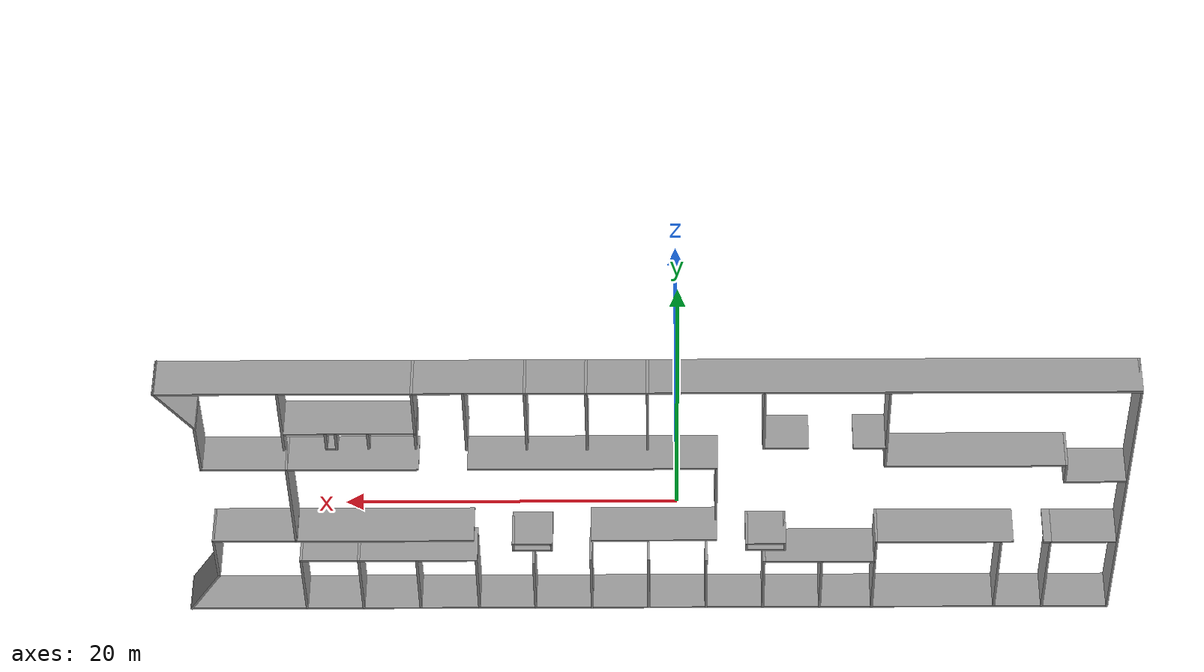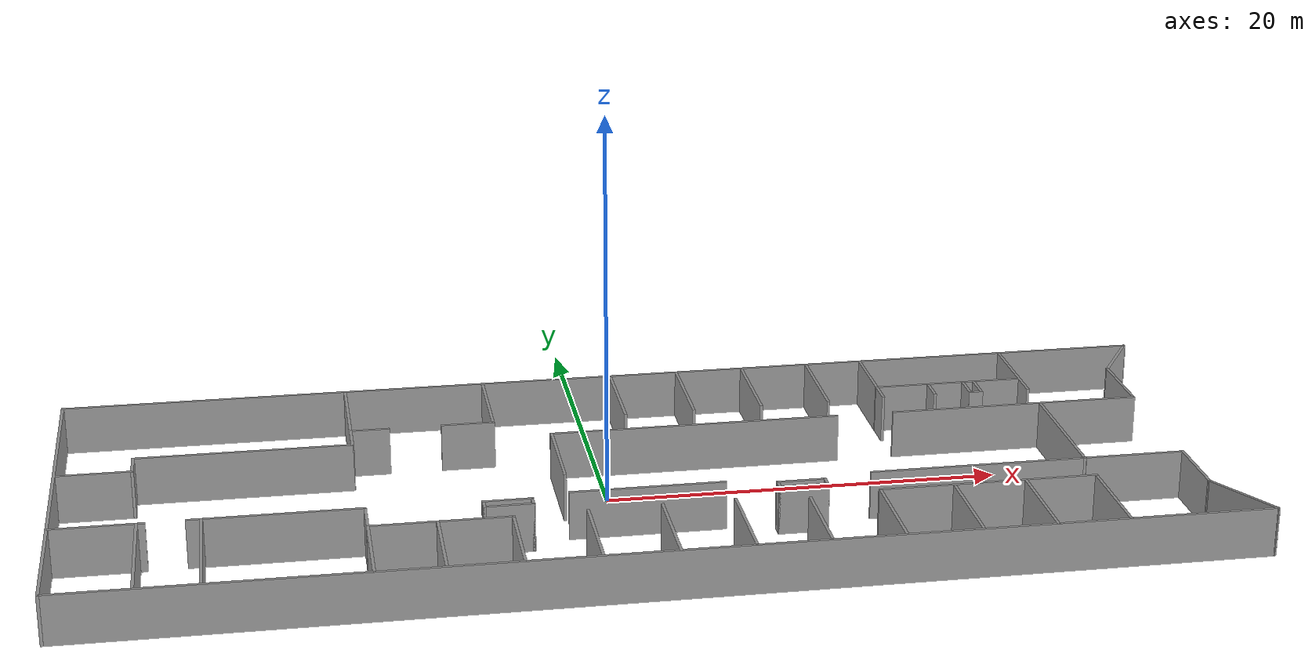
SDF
<?xml version='1.0'?>
<sdf version='1.7'>
  <model name='perch'>
    <pose>1.75988 -0.369617 0 0 -0 0</pose>
    <link name='Wall_1'>
      <collision name='Wall_1_Collision'>
        <geometry>
          <box>
            <size>4.25 0.15 2.5</size>
          </box>
        </geometry>
        <pose>0 0 1.25 0 -0 0</pose>
      </collision>
      <visual name='Wall_1_Visual'>
        <pose>0 0 1.25 0 -0 0</pose>
        <geometry>
          <box>
            <size>4.25 0.15 2.5</size>
          </box>
        </geometry>
        <material>
          <script>
            <uri>file://media/materials/scripts/gazebo.material</uri>
            <name>Gazebo/Grey</name>
          </script>
          <ambient>1 1 1 1</ambient>
        </material>
        <meta>
          <layer>0</layer>
        </meta>
      </visual>
      <pose>26.7358 5.62521 0 0 -0 -1.5708</pose>
    </link>
    <link name='Wall_101'>
      <collision name='Wall_101_Collision'>
        <geometry>
          <box>
            <size>3.84972 0.15 2.5</size>
          </box>
        </geometry>
        <pose>0 0 1.25 0 -0 0</pose>
      </collision>
      <visual name='Wall_101_Visual'>
        <pose>0 0 1.25 0 -0 0</pose>
        <geometry>
          <box>
            <size>3.84972 0.15 2.5</size>
          </box>
        </geometry>
        <material>
          <script>
            <uri>file://media/materials/scripts/gazebo.material</uri>
            <name>Gazebo/Grey</name>
          </script>
          <ambient>1 1 1 1</ambient>
        </material>
        <meta>
          <layer>0</layer>
        </meta>
      </visual>
      <pose>-26.8899 2.15562 0 0 -0 0</pose>
    </link>
    <link name='Wall_102'>
      <collision name='Wall_102_Collision'>
        <geometry>
          <box>
            <size>1.75 0.15 2.5</size>
          </box>
        </geometry>
        <pose>0 0 1.25 0 -0 0</pose>
      </collision>
      <visual name='Wall_102_Visual'>
        <pose>0 0 1.25 0 -0 0</pose>
        <geometry>
          <box>
            <size>1.75 0.15 2.5</size>
          </box>
        </geometry>
        <material>
          <script>
            <uri>file://media/materials/scripts/gazebo.material</uri>
            <name>Gazebo/Grey</name>
          </script>
          <ambient>1 1 1 1</ambient>
        </material>
        <meta>
          <layer>0</layer>
        </meta>
      </visual>
      <pose>-25.04 2.95553 0 0 -0 1.57097</pose>
    </link>
    <link name='Wall_103'>
      <collision name='Wall_103_Collision'>
        <geometry>
          <box>
            <size>11 0.15 2.5</size>
          </box>
        </geometry>
        <pose>0 0 1.25 0 -0 0</pose>
      </collision>
      <visual name='Wall_103_Visual'>
        <pose>0 0 1.25 0 -0 0</pose>
        <geometry>
          <box>
            <size>11 0.15 2.5</size>
          </box>
        </geometry>
        <material>
          <script>
            <uri>file://media/materials/scripts/gazebo.material</uri>
            <name>Gazebo/Grey</name>
          </script>
          <ambient>1 1 1 1</ambient>
        </material>
        <meta>
          <layer>0</layer>
        </meta>
      </visual>
      <pose>-19.6152 3.75545 0 0 -0 0</pose>
    </link>
    <link name='Wall_107'>
      <collision name='Wall_107_Collision'>
        <geometry>
          <box>
            <size>7.25 0.15 2.5</size>
          </box>
        </geometry>
        <pose>0 0 1.25 0 -0 0</pose>
      </collision>
      <visual name='Wall_107_Visual'>
        <pose>0 0 1.25 0 -0 0</pose>
        <geometry>
          <box>
            <size>7.25 0.15 2.5</size>
          </box>
        </geometry>
        <material>
          <script>
            <uri>file://media/materials/scripts/gazebo.material</uri>
            <name>Gazebo/Grey</name>
          </script>
          <ambient>1 1 1 1</ambient>
        </material>
        <meta>
          <layer>0</layer>
        </meta>
      </visual>
      <pose>-14.1902 7.30545 0 0 -0 1.5708</pose>
    </link>
    <link name='Wall_112'>
      <collision name='Wall_112_Collision'>
        <geometry>
          <box>
            <size>2 0.15 2.5</size>
          </box>
        </geometry>
        <pose>0 0 1.25 0 -0 0</pose>
      </collision>
      <visual name='Wall_112_Visual'>
        <pose>0 0 1.25 0 -0 0</pose>
        <geometry>
          <box>
            <size>2 0.15 2.5</size>
          </box>
        </geometry>
        <material>
          <script>
            <uri>file://media/materials/scripts/gazebo.material</uri>
            <name>Gazebo/Grey</name>
          </script>
          <ambient>1 1 1 1</ambient>
        </material>
        <meta>
          <layer>0</layer>
        </meta>
      </visual>
      <pose>-13.2039 5.55962 0 0 -0 0</pose>
    </link>
    <link name='Wall_114'>
      <collision name='Wall_114_Collision'>
        <geometry>
          <box>
            <size>2.75 0.15 2.5</size>
          </box>
        </geometry>
        <pose>0 0 1.25 0 -0 0</pose>
      </collision>
      <visual name='Wall_114_Visual'>
        <pose>0 0 1.25 0 -0 0</pose>
        <geometry>
          <box>
            <size>2.75 0.15 2.5</size>
          </box>
        </geometry>
        <material>
          <script>
            <uri>file://media/materials/scripts/gazebo.material</uri>
            <name>Gazebo/Grey</name>
          </script>
          <ambient>1 1 1 1</ambient>
        </material>
        <meta>
          <layer>0</layer>
        </meta>
      </visual>
      <pose>-8.19643 5.55924 0 0 -0 0</pose>
    </link>
    <link name='Wall_115'>
      <collision name='Wall_115_Collision'>
        <geometry>
          <box>
            <size>5.48969 0.15 2.5</size>
          </box>
        </geometry>
        <pose>0 0 1.25 0 -0 0</pose>
      </collision>
      <visual name='Wall_115_Visual'>
        <pose>0 0 1.25 0 -0 0</pose>
        <geometry>
          <box>
            <size>5.48969 0.15 2.5</size>
          </box>
        </geometry>
        <material>
          <script>
            <uri>file://media/materials/scripts/gazebo.material</uri>
            <name>Gazebo/Grey</name>
          </script>
          <ambient>1 1 1 1</ambient>
        </material>
        <meta>
          <layer>0</layer>
        </meta>
      </visual>
      <pose>-6.89644 8.23423 0 0 -0 1.5708</pose>
    </link>
    <link name='Wall_12'>
      <collision name='Wall_12_Collision'>
        <geometry>
          <box>
            <size>57.75 0.15 2.5</size>
          </box>
        </geometry>
        <pose>0 0 1.25 0 -0 0</pose>
      </collision>
      <visual name='Wall_12_Visual'>
        <pose>0 0 1.25 0 -0 0</pose>
        <geometry>
          <box>
            <size>57.75 0.15 2.5</size>
          </box>
        </geometry>
        <material>
          <script>
            <uri>file://media/materials/scripts/gazebo.material</uri>
            <name>Gazebo/Grey</name>
          </script>
          <ambient>1 1 1 1</ambient>
        </material>
        <meta>
          <layer>0</layer>
        </meta>
      </visual>
      <pose>-0.014225 10.9245 0 0 -0 0</pose>
    </link>
    <link name='Wall_14'>
      <collision name='Wall_14_Collision'>
        <geometry>
          <box>
            <size>3.99193 0.15 2.5</size>
          </box>
        </geometry>
        <pose>0 0 1.25 0 -0 0</pose>
      </collision>
      <visual name='Wall_14_Visual'>
        <pose>0 0 1.25 0 -0 0</pose>
        <geometry>
          <box>
            <size>3.99193 0.15 2.5</size>
          </box>
        </geometry>
        <material>
          <script>
            <uri>file://media/materials/scripts/gazebo.material</uri>
            <name>Gazebo/Grey</name>
          </script>
          <ambient>1 1 1 1</ambient>
        </material>
        <meta>
          <layer>0</layer>
        </meta>
      </visual>
      <pose>27.7608 9.29985 0 0 -0 -2.13363</pose>
    </link>
    <link name='Wall_16'>
      <collision name='Wall_16_Collision'>
        <geometry>
          <box>
            <size>5.25 0.15 2.5</size>
          </box>
        </geometry>
        <pose>0 0 1.25 0 -0 0</pose>
      </collision>
      <visual name='Wall_16_Visual'>
        <pose>0 0 1.25 0 -0 0</pose>
        <geometry>
          <box>
            <size>5.25 0.15 2.5</size>
          </box>
        </geometry>
        <material>
          <script>
            <uri>file://media/materials/scripts/gazebo.material</uri>
            <name>Gazebo/Grey</name>
          </script>
          <ambient>1 1 1 1</ambient>
        </material>
        <meta>
          <layer>0</layer>
        </meta>
      </visual>
      <pose>21.5228 -8.36181 0 0 -0 1.5708</pose>
    </link>
    <link name='Wall_18'>
      <collision name='Wall_18_Collision'>
        <geometry>
          <box>
            <size>11 0.15 2.5</size>
          </box>
        </geometry>
        <pose>0 0 1.25 0 -0 0</pose>
      </collision>
      <visual name='Wall_18_Visual'>
        <pose>0 0 1.25 0 -0 0</pose>
        <geometry>
          <box>
            <size>11 0.15 2.5</size>
          </box>
        </geometry>
        <material>
          <script>
            <uri>file://media/materials/scripts/gazebo.material</uri>
            <name>Gazebo/Grey</name>
          </script>
          <ambient>1 1 1 1</ambient>
        </material>
        <meta>
          <layer>0</layer>
        </meta>
      </visual>
      <pose>16.0978 -5.81181 0 0 -0 3.14159</pose>
    </link>
    <link name='Wall_2'>
      <collision name='Wall_2_Collision'>
        <geometry>
          <box>
            <size>5.25 0.15 2.5</size>
          </box>
        </geometry>
        <pose>0 0 1.25 0 -0 0</pose>
      </collision>
      <visual name='Wall_2_Visual'>
        <pose>0 0 1.25 0 -0 0</pose>
        <geometry>
          <box>
            <size>5.25 0.15 2.5</size>
          </box>
        </geometry>
        <material>
          <script>
            <uri>file://media/materials/scripts/gazebo.material</uri>
            <name>Gazebo/Grey</name>
          </script>
          <ambient>1 1 1 1</ambient>
        </material>
        <meta>
          <layer>0</layer>
        </meta>
      </visual>
      <pose>24.1858 3.5752 0 0 -0 3.14159</pose>
    </link>
    <link name='Wall_20'>
      <collision name='Wall_20_Collision'>
        <geometry>
          <box>
            <size>5.25 0.15 2.5</size>
          </box>
        </geometry>
        <pose>0 0 1.25 0 -0 0</pose>
      </collision>
      <visual name='Wall_20_Visual'>
        <pose>0 0 1.25 0 -0 0</pose>
        <geometry>
          <box>
            <size>5.25 0.15 2.5</size>
          </box>
        </geometry>
        <material>
          <script>
            <uri>file://media/materials/scripts/gazebo.material</uri>
            <name>Gazebo/Grey</name>
          </script>
          <ambient>1 1 1 1</ambient>
        </material>
        <meta>
          <layer>0</layer>
        </meta>
      </visual>
      <pose>10.6728 -8.36181 0 0 -0 -1.5708</pose>
    </link>
    <link name='Wall_24'>
      <collision name='Wall_24_Collision'>
        <geometry>
          <box>
            <size>5.25 0.15 2.5</size>
          </box>
        </geometry>
        <pose>0 0 1.25 0 -0 0</pose>
      </collision>
      <visual name='Wall_24_Visual'>
        <pose>0 0 1.25 0 -0 0</pose>
        <geometry>
          <box>
            <size>5.25 0.15 2.5</size>
          </box>
        </geometry>
        <material>
          <script>
            <uri>file://media/materials/scripts/gazebo.material</uri>
            <name>Gazebo/Grey</name>
          </script>
          <ambient>1 1 1 1</ambient>
        </material>
        <meta>
          <layer>0</layer>
        </meta>
      </visual>
      <pose>14.3611 -8.37361 0 0 -0 -1.5708</pose>
    </link>
    <link name='Wall_26'>
      <collision name='Wall_26_Collision'>
        <geometry>
          <box>
            <size>5.25 0.15 2.5</size>
          </box>
        </geometry>
        <pose>0 0 1.25 0 -0 0</pose>
      </collision>
      <visual name='Wall_26_Visual'>
        <pose>0 0 1.25 0 -0 0</pose>
        <geometry>
          <box>
            <size>5.25 0.15 2.5</size>
          </box>
        </geometry>
        <material>
          <script>
            <uri>file://media/materials/scripts/gazebo.material</uri>
            <name>Gazebo/Grey</name>
          </script>
          <ambient>1 1 1 1</ambient>
        </material>
        <meta>
          <layer>0</layer>
        </meta>
      </visual>
      <pose>17.9528 -8.35792 0 0 -0 -1.5708</pose>
    </link>
    <link name='Wall_28'>
      <collision name='Wall_28_Collision'>
        <geometry>
          <box>
            <size>4.85 0.15 2.5</size>
          </box>
        </geometry>
        <pose>0 0 1.25 0 -0 0</pose>
      </collision>
      <visual name='Wall_28_Visual'>
        <pose>0 0 1.25 0 -0 0</pose>
        <geometry>
          <box>
            <size>4.85 0.15 2.5</size>
          </box>
        </geometry>
        <material>
          <script>
            <uri>file://media/materials/scripts/gazebo.material</uri>
            <name>Gazebo/Grey</name>
          </script>
          <ambient>1 1 1 1</ambient>
        </material>
        <meta>
          <layer>0</layer>
        </meta>
      </visual>
      <pose>7.13012 -8.57138 0 0 -0 1.5708</pose>
    </link>
    <link name='Wall_3'>
      <collision name='Wall_3_Collision'>
        <geometry>
          <box>
            <size>7.44959 0.15 2.5</size>
          </box>
        </geometry>
        <pose>0 0 1.25 0 -0 0</pose>
      </collision>
      <visual name='Wall_3_Visual'>
        <pose>0 0 1.25 0 -0 0</pose>
        <geometry>
          <box>
            <size>7.44959 0.15 2.5</size>
          </box>
        </geometry>
        <material>
          <script>
            <uri>file://media/materials/scripts/gazebo.material</uri>
            <name>Gazebo/Grey</name>
          </script>
          <ambient>1 1 1 1</ambient>
        </material>
        <meta>
          <layer>0</layer>
        </meta>
      </visual>
      <pose>21.6359 -0.074589 0 0 -0 -1.57075</pose>
    </link>
    <link name='Wall_30'>
      <collision name='Wall_30_Collision'>
        <geometry>
          <box>
            <size>5.25 0.15 2.5</size>
          </box>
        </geometry>
        <pose>0 0 1.25 0 -0 0</pose>
      </collision>
      <visual name='Wall_30_Visual'>
        <pose>0 0 1.25 0 -0 0</pose>
        <geometry>
          <box>
            <size>5.25 0.15 2.5</size>
          </box>
        </geometry>
        <material>
          <script>
            <uri>file://media/materials/scripts/gazebo.material</uri>
            <name>Gazebo/Grey</name>
          </script>
          <ambient>1 1 1 1</ambient>
        </material>
        <meta>
          <layer>0</layer>
        </meta>
      </visual>
      <pose>3.57006 -8.3711 0 0 -0 1.5708</pose>
    </link>
    <link name='Wall_32'>
      <collision name='Wall_32_Collision'>
        <geometry>
          <box>
            <size>5.25 0.15 2.5</size>
          </box>
        </geometry>
        <pose>0 0 1.25 0 -0 0</pose>
      </collision>
      <visual name='Wall_32_Visual'>
        <pose>0 0 1.25 0 -0 0</pose>
        <geometry>
          <box>
            <size>5.25 0.15 2.5</size>
          </box>
        </geometry>
        <material>
          <script>
            <uri>file://media/materials/scripts/gazebo.material</uri>
            <name>Gazebo/Grey</name>
          </script>
          <ambient>1 1 1 1</ambient>
        </material>
        <meta>
          <layer>0</layer>
        </meta>
      </visual>
      <pose>0.009657 -8.35542 0 0 -0 1.5708</pose>
    </link>
    <link name='Wall_34'>
      <collision name='Wall_34_Collision'>
        <geometry>
          <box>
            <size>5.14954 0.15 2.5</size>
          </box>
        </geometry>
        <pose>0 0 1.25 0 -0 0</pose>
      </collision>
      <visual name='Wall_34_Visual'>
        <pose>0 0 1.25 0 -0 0</pose>
        <geometry>
          <box>
            <size>5.14954 0.15 2.5</size>
          </box>
        </geometry>
        <material>
          <script>
            <uri>file://media/materials/scripts/gazebo.material</uri>
            <name>Gazebo/Grey</name>
          </script>
          <ambient>1 1 1 1</ambient>
        </material>
        <meta>
          <layer>0</layer>
        </meta>
      </visual>
      <pose>-3.58188 -8.38338 0 0 -0 1.5708</pose>
    </link>
    <link name='Wall_37'>
      <collision name='Wall_37_Collision'>
        <geometry>
          <box>
            <size>2.5 0.15 2.5</size>
          </box>
        </geometry>
        <pose>0 0 1.25 0 -0 0</pose>
      </collision>
      <visual name='Wall_37_Visual'>
        <pose>0 0 1.25 0 -0 0</pose>
        <geometry>
          <box>
            <size>2.5 0.15 2.5</size>
          </box>
        </geometry>
        <material>
          <script>
            <uri>file://media/materials/scripts/gazebo.material</uri>
            <name>Gazebo/Grey</name>
          </script>
          <ambient>1 1 1 1</ambient>
        </material>
        <meta>
          <layer>0</layer>
        </meta>
      </visual>
      <pose>7.14749 -4.14536 0 0 -0 3.14159</pose>
    </link>
    <link name='Wall_38'>
      <collision name='Wall_38_Collision'>
        <geometry>
          <box>
            <size>0.75 0.15 2.5</size>
          </box>
        </geometry>
        <pose>0 0 1.25 0 -0 0</pose>
      </collision>
      <visual name='Wall_38_Visual'>
        <pose>0 0 1.25 0 -0 0</pose>
        <geometry>
          <box>
            <size>0.75 0.15 2.5</size>
          </box>
        </geometry>
        <material>
          <script>
            <uri>file://media/materials/scripts/gazebo.material</uri>
            <name>Gazebo/Grey</name>
          </script>
          <ambient>1 1 1 1</ambient>
        </material>
        <meta>
          <layer>0</layer>
        </meta>
      </visual>
      <pose>5.9725 -4.44536 0 0 -0 -1.5708</pose>
    </link>
    <link name='Wall_39'>
      <collision name='Wall_39_Collision'>
        <geometry>
          <box>
            <size>2.5 0.15 2.5</size>
          </box>
        </geometry>
        <pose>0 0 1.25 0 -0 0</pose>
      </collision>
      <visual name='Wall_39_Visual'>
        <pose>0 0 1.25 0 -0 0</pose>
        <geometry>
          <box>
            <size>2.5 0.15 2.5</size>
          </box>
        </geometry>
        <material>
          <script>
            <uri>file://media/materials/scripts/gazebo.material</uri>
            <name>Gazebo/Grey</name>
          </script>
          <ambient>1 1 1 1</ambient>
        </material>
        <meta>
          <layer>0</layer>
        </meta>
      </visual>
      <pose>7.14749 -4.74536 0 0 -0 0</pose>
    </link>
    <link name='Wall_4'>
      <collision name='Wall_4_Collision'>
        <geometry>
          <box>
            <size>5.25 0.15 2.5</size>
          </box>
        </geometry>
        <pose>0 0 1.25 0 -0 0</pose>
      </collision>
      <visual name='Wall_4_Visual'>
        <pose>0 0 1.25 0 -0 0</pose>
        <geometry>
          <box>
            <size>5.25 0.15 2.5</size>
          </box>
        </geometry>
        <material>
          <script>
            <uri>file://media/materials/scripts/gazebo.material</uri>
            <name>Gazebo/Grey</name>
          </script>
          <ambient>1 1 1 1</ambient>
        </material>
        <meta>
          <layer>0</layer>
        </meta>
      </visual>
      <pose>24.1861 -3.72438 0 0 -0 0</pose>
    </link>
    <link name='Wall_40'>
      <collision name='Wall_40_Collision'>
        <geometry>
          <box>
            <size>0.75 0.15 2.5</size>
          </box>
        </geometry>
        <pose>0 0 1.25 0 -0 0</pose>
      </collision>
      <visual name='Wall_40_Visual'>
        <pose>0 0 1.25 0 -0 0</pose>
        <geometry>
          <box>
            <size>0.75 0.15 2.5</size>
          </box>
        </geometry>
        <material>
          <script>
            <uri>file://media/materials/scripts/gazebo.material</uri>
            <name>Gazebo/Grey</name>
          </script>
          <ambient>1 1 1 1</ambient>
        </material>
        <meta>
          <layer>0</layer>
        </meta>
      </visual>
      <pose>8.32249 -4.44536 0 0 -0 1.5708</pose>
    </link>
    <link name='Wall_42'>
      <collision name='Wall_42_Collision'>
        <geometry>
          <box>
            <size>2.5 0.15 2.5</size>
          </box>
        </geometry>
        <pose>0 0 1.25 0 -0 0</pose>
      </collision>
      <visual name='Wall_42_Visual'>
        <pose>0 0 1.25 0 -0 0</pose>
        <geometry>
          <box>
            <size>2.5 0.15 2.5</size>
          </box>
        </geometry>
        <material>
          <script>
            <uri>file://media/materials/scripts/gazebo.material</uri>
            <name>Gazebo/Grey</name>
          </script>
          <ambient>1 1 1 1</ambient>
        </material>
        <meta>
          <layer>0</layer>
        </meta>
      </visual>
      <pose>-7.2196 -4.14536 0 0 -0 3.14159</pose>
    </link>
    <link name='Wall_43'>
      <collision name='Wall_43_Collision'>
        <geometry>
          <box>
            <size>0.75 0.15 2.5</size>
          </box>
        </geometry>
        <pose>0 0 1.25 0 -0 0</pose>
      </collision>
      <visual name='Wall_43_Visual'>
        <pose>0 0 1.25 0 -0 0</pose>
        <geometry>
          <box>
            <size>0.75 0.15 2.5</size>
          </box>
        </geometry>
        <material>
          <script>
            <uri>file://media/materials/scripts/gazebo.material</uri>
            <name>Gazebo/Grey</name>
          </script>
          <ambient>1 1 1 1</ambient>
        </material>
        <meta>
          <layer>0</layer>
        </meta>
      </visual>
      <pose>-8.3946 -4.44536 0 0 -0 -1.5708</pose>
    </link>
    <link name='Wall_44'>
      <collision name='Wall_44_Collision'>
        <geometry>
          <box>
            <size>2.5 0.15 2.5</size>
          </box>
        </geometry>
        <pose>0 0 1.25 0 -0 0</pose>
      </collision>
      <visual name='Wall_44_Visual'>
        <pose>0 0 1.25 0 -0 0</pose>
        <geometry>
          <box>
            <size>2.5 0.15 2.5</size>
          </box>
        </geometry>
        <material>
          <script>
            <uri>file://media/materials/scripts/gazebo.material</uri>
            <name>Gazebo/Grey</name>
          </script>
          <ambient>1 1 1 1</ambient>
        </material>
        <meta>
          <layer>0</layer>
        </meta>
      </visual>
      <pose>-7.2196 -4.74536 0 0 -0 0</pose>
    </link>
    <link name='Wall_45'>
      <collision name='Wall_45_Collision'>
        <geometry>
          <box>
            <size>0.75 0.15 2.5</size>
          </box>
        </geometry>
        <pose>0 0 1.25 0 -0 0</pose>
      </collision>
      <visual name='Wall_45_Visual'>
        <pose>0 0 1.25 0 -0 0</pose>
        <geometry>
          <box>
            <size>0.75 0.15 2.5</size>
          </box>
        </geometry>
        <material>
          <script>
            <uri>file://media/materials/scripts/gazebo.material</uri>
            <name>Gazebo/Grey</name>
          </script>
          <ambient>1 1 1 1</ambient>
        </material>
        <meta>
          <layer>0</layer>
        </meta>
      </visual>
      <pose>-6.0446 -4.44536 0 0 -0 1.5708</pose>
    </link>
    <link name='Wall_47'>
      <collision name='Wall_47_Collision'>
        <geometry>
          <box>
            <size>0.25 0.15 2.5</size>
          </box>
        </geometry>
        <pose>0 0 1.25 0 -0 0</pose>
      </collision>
      <visual name='Wall_47_Visual'>
        <pose>0 0 1.25 0 -0 0</pose>
        <geometry>
          <box>
            <size>0.25 0.15 2.5</size>
          </box>
        </geometry>
        <material>
          <script>
            <uri>file://media/materials/scripts/gazebo.material</uri>
            <name>Gazebo/Grey</name>
          </script>
          <ambient>1 1 1 1</ambient>
        </material>
        <meta>
          <layer>0</layer>
        </meta>
      </visual>
      <pose>21.6359 -3.67459 0 0 -0 1.57425</pose>
    </link>
    <link name='Wall_48'>
      <collision name='Wall_48_Collision'>
        <geometry>
          <box>
            <size>0.25 0.15 2.5</size>
          </box>
        </geometry>
        <pose>0 0 1.25 0 -0 0</pose>
      </collision>
      <visual name='Wall_48_Visual'>
        <pose>0 0 1.25 0 -0 0</pose>
        <geometry>
          <box>
            <size>0.25 0.15 2.5</size>
          </box>
        </geometry>
        <material>
          <script>
            <uri>file://media/materials/scripts/gazebo.material</uri>
            <name>Gazebo/Grey</name>
          </script>
          <ambient>1 1 1 1</ambient>
        </material>
        <meta>
          <layer>0</layer>
        </meta>
      </visual>
      <pose>21.6359 -3.67459 0 0 -0 -1.56734</pose>
    </link>
    <link name='Wall_49'>
      <collision name='Wall_49_Collision'>
        <geometry>
          <box>
            <size>11 0.15 2.5</size>
          </box>
        </geometry>
        <pose>0 0 1.25 0 -0 0</pose>
      </collision>
      <visual name='Wall_49_Visual'>
        <pose>0 0 1.25 0 -0 0</pose>
        <geometry>
          <box>
            <size>11 0.15 2.5</size>
          </box>
        </geometry>
        <material>
          <script>
            <uri>file://media/materials/scripts/gazebo.material</uri>
            <name>Gazebo/Grey</name>
          </script>
          <ambient>1 1 1 1</ambient>
        </material>
        <meta>
          <layer>0</layer>
        </meta>
      </visual>
      <pose>16.2111 -3.72438 0 0 -0 3.14159</pose>
    </link>
    <link name='Wall_5'>
      <collision name='Wall_5_Collision'>
        <geometry>
          <box>
            <size>3.80041 0.15 2.5</size>
          </box>
        </geometry>
        <pose>0 0 1.25 0 -0 0</pose>
      </collision>
      <visual name='Wall_5_Visual'>
        <pose>0 0 1.25 0 -0 0</pose>
        <geometry>
          <box>
            <size>3.80041 0.15 2.5</size>
          </box>
        </geometry>
        <material>
          <script>
            <uri>file://media/materials/scripts/gazebo.material</uri>
            <name>Gazebo/Grey</name>
          </script>
          <ambient>1 1 1 1</ambient>
        </material>
        <meta>
          <layer>0</layer>
        </meta>
      </visual>
      <pose>26.7359 -5.54959 0 0 -0 -1.57089</pose>
    </link>
    <link name='Wall_55'>
      <collision name='Wall_55_Collision'>
        <geometry>
          <box>
            <size>5.44994 0.15 2.5</size>
          </box>
        </geometry>
        <pose>0 0 1.25 0 -0 0</pose>
      </collision>
      <visual name='Wall_55_Visual'>
        <pose>0 0 1.25 0 -0 0</pose>
        <geometry>
          <box>
            <size>5.44994 0.15 2.5</size>
          </box>
        </geometry>
        <material>
          <script>
            <uri>file://media/materials/scripts/gazebo.material</uri>
            <name>Gazebo/Grey</name>
          </script>
          <ambient>1 1 1 1</ambient>
        </material>
        <meta>
          <layer>0</layer>
        </meta>
      </visual>
      <pose>21.5911 8.24162 0 0 -0 -1.5708</pose>
    </link>
    <link name='Wall_57'>
      <collision name='Wall_57_Collision'>
        <geometry>
          <box>
            <size>8 0.15 2.5</size>
          </box>
        </geometry>
        <pose>0 0 1.25 0 -0 0</pose>
      </collision>
      <visual name='Wall_57_Visual'>
        <pose>0 0 1.25 0 -0 0</pose>
        <geometry>
          <box>
            <size>8 0.15 2.5</size>
          </box>
        </geometry>
        <material>
          <script>
            <uri>file://media/materials/scripts/gazebo.material</uri>
            <name>Gazebo/Grey</name>
          </script>
          <ambient>1 1 1 1</ambient>
        </material>
        <meta>
          <layer>0</layer>
        </meta>
      </visual>
      <pose>17.6709 7.07712 0 0 -0 3.14159</pose>
    </link>
    <link name='Wall_58'>
      <collision name='Wall_58_Collision'>
        <geometry>
          <box>
            <size>4 0.15 2.5</size>
          </box>
        </geometry>
        <pose>0 0 1.25 0 -0 0</pose>
      </collision>
      <visual name='Wall_58_Visual'>
        <pose>0 0 1.25 0 -0 0</pose>
        <geometry>
          <box>
            <size>4 0.15 2.5</size>
          </box>
        </geometry>
        <material>
          <script>
            <uri>file://media/materials/scripts/gazebo.material</uri>
            <name>Gazebo/Grey</name>
          </script>
          <ambient>1 1 1 1</ambient>
        </material>
        <meta>
          <layer>0</layer>
        </meta>
      </visual>
      <pose>13.7459 9.00212 0 0 -0 1.5708</pose>
    </link>
    <link name='Wall_6'>
      <collision name='Wall_6_Collision'>
        <geometry>
          <box>
            <size>4.25 0.15 2.5</size>
          </box>
        </geometry>
        <pose>0 0 1.25 0 -0 0</pose>
      </collision>
      <visual name='Wall_6_Visual'>
        <pose>0 0 1.25 0 -0 0</pose>
        <geometry>
          <box>
            <size>4.25 0.15 2.5</size>
          </box>
        </geometry>
        <material>
          <script>
            <uri>file://media/materials/scripts/gazebo.material</uri>
            <name>Gazebo/Grey</name>
          </script>
          <ambient>1 1 1 1</ambient>
        </material>
        <meta>
          <layer>0</layer>
        </meta>
      </visual>
      <pose>27.7608 -9.15015 0 0 -0 -1.0472</pose>
    </link>
    <link name='Wall_60'>
      <collision name='Wall_60_Collision'>
        <geometry>
          <box>
            <size>1.5 0.15 2.5</size>
          </box>
        </geometry>
        <pose>0 0 1.25 0 -0 0</pose>
      </collision>
      <visual name='Wall_60_Visual'>
        <pose>0 0 1.25 0 -0 0</pose>
        <geometry>
          <box>
            <size>1.5 0.15 2.5</size>
          </box>
        </geometry>
        <material>
          <script>
            <uri>file://media/materials/scripts/gazebo.material</uri>
            <name>Gazebo/Grey</name>
          </script>
          <ambient>1 1 1 1</ambient>
        </material>
        <meta>
          <layer>0</layer>
        </meta>
      </visual>
      <pose>13.7459 6.40212 0 0 -0 -1.5708</pose>
    </link>
    <link name='Wall_62'>
      <collision name='Wall_62_Collision'>
        <geometry>
          <box>
            <size>1.5 0.15 2.5</size>
          </box>
        </geometry>
        <pose>0 0 1.25 0 -0 0</pose>
      </collision>
      <visual name='Wall_62_Visual'>
        <pose>0 0 1.25 0 -0 0</pose>
        <geometry>
          <box>
            <size>1.5 0.15 2.5</size>
          </box>
        </geometry>
        <material>
          <script>
            <uri>file://media/materials/scripts/gazebo.material</uri>
            <name>Gazebo/Grey</name>
          </script>
          <ambient>1 1 1 1</ambient>
        </material>
        <meta>
          <layer>0</layer>
        </meta>
      </visual>
      <pose>16.5483 6.37058 0 0 -0 -1.5708</pose>
    </link>
    <link name='Wall_64'>
      <collision name='Wall_64_Collision'>
        <geometry>
          <box>
            <size>1.57256 0.15 2.5</size>
          </box>
        </geometry>
        <pose>0 0 1.25 0 -0 0</pose>
      </collision>
      <visual name='Wall_64_Visual'>
        <pose>0 0 1.25 0 -0 0</pose>
        <geometry>
          <box>
            <size>1.57256 0.15 2.5</size>
          </box>
        </geometry>
        <material>
          <script>
            <uri>file://media/materials/scripts/gazebo.material</uri>
            <name>Gazebo/Grey</name>
          </script>
          <ambient>1 1 1 1</ambient>
        </material>
        <meta>
          <layer>0</layer>
        </meta>
      </visual>
      <pose>18.4569 6.3343 0 0 -0 -1.5708</pose>
    </link>
    <link name='Wall_65'>
      <collision name='Wall_65_Collision'>
        <geometry>
          <box>
            <size>0.75 0.15 2.5</size>
          </box>
        </geometry>
        <pose>0 0 1.25 0 -0 0</pose>
      </collision>
      <visual name='Wall_65_Visual'>
        <pose>0 0 1.25 0 -0 0</pose>
        <geometry>
          <box>
            <size>0.75 0.15 2.5</size>
          </box>
        </geometry>
        <material>
          <script>
            <uri>file://media/materials/scripts/gazebo.material</uri>
            <name>Gazebo/Grey</name>
          </script>
          <ambient>1 1 1 1</ambient>
        </material>
        <meta>
          <layer>0</layer>
        </meta>
      </visual>
      <pose>18.7569 5.61395 0 0 -0 0</pose>
    </link>
    <link name='Wall_66'>
      <collision name='Wall_66_Collision'>
        <geometry>
          <box>
            <size>1.57256 0.15 2.5</size>
          </box>
        </geometry>
        <pose>0 0 1.25 0 -0 0</pose>
      </collision>
      <visual name='Wall_66_Visual'>
        <pose>0 0 1.25 0 -0 0</pose>
        <geometry>
          <box>
            <size>1.57256 0.15 2.5</size>
          </box>
        </geometry>
        <material>
          <script>
            <uri>file://media/materials/scripts/gazebo.material</uri>
            <name>Gazebo/Grey</name>
          </script>
          <ambient>1 1 1 1</ambient>
        </material>
        <meta>
          <layer>0</layer>
        </meta>
      </visual>
      <pose>19.0569 6.3343 0 0 -0 1.5708</pose>
    </link>
    <link name='Wall_68'>
      <collision name='Wall_68_Collision'>
        <geometry>
          <box>
            <size>5.5 0.15 2.5</size>
          </box>
        </geometry>
        <pose>0 0 1.25 0 -0 0</pose>
      </collision>
      <visual name='Wall_68_Visual'>
        <pose>0 0 1.25 0 -0 0</pose>
        <geometry>
          <box>
            <size>5.5 0.15 2.5</size>
          </box>
        </geometry>
        <material>
          <script>
            <uri>file://media/materials/scripts/gazebo.material</uri>
            <name>Gazebo/Grey</name>
          </script>
          <ambient>1 1 1 1</ambient>
        </material>
        <meta>
          <layer>0</layer>
        </meta>
      </visual>
      <pose>10.7436 8.23513 0 0 -0 -1.5708</pose>
    </link>
    <link name='Wall_7'>
      <collision name='Wall_7_Collision'>
        <geometry>
          <box>
            <size>57.75 0.15 2.5</size>
          </box>
        </geometry>
        <pose>0 0 1.25 0 -0 0</pose>
      </collision>
      <visual name='Wall_7_Visual'>
        <pose>0 0 1.25 0 -0 0</pose>
        <geometry>
          <box>
            <size>57.75 0.15 2.5</size>
          </box>
        </geometry>
        <material>
          <script>
            <uri>file://media/materials/scripts/gazebo.material</uri>
            <name>Gazebo/Grey</name>
          </script>
          <ambient>1 1 1 1</ambient>
        </material>
        <meta>
          <layer>0</layer>
        </meta>
      </visual>
      <pose>-0.014225 -10.9255 0 0 -0 3.14159</pose>
    </link>
    <link name='Wall_70'>
      <collision name='Wall_70_Collision'>
        <geometry>
          <box>
            <size>5.5 0.15 2.5</size>
          </box>
        </geometry>
        <pose>0 0 1.25 0 -0 0</pose>
      </collision>
      <visual name='Wall_70_Visual'>
        <pose>0 0 1.25 0 -0 0</pose>
        <geometry>
          <box>
            <size>5.5 0.15 2.5</size>
          </box>
        </geometry>
        <material>
          <script>
            <uri>file://media/materials/scripts/gazebo.material</uri>
            <name>Gazebo/Grey</name>
          </script>
          <ambient>1 1 1 1</ambient>
        </material>
        <meta>
          <layer>0</layer>
        </meta>
      </visual>
      <pose>7.16295 8.2509 0 0 -0 -1.5708</pose>
    </link>
    <link name='Wall_72'>
      <collision name='Wall_72_Collision'>
        <geometry>
          <box>
            <size>5.5 0.15 2.5</size>
          </box>
        </geometry>
        <pose>0 0 1.25 0 -0 0</pose>
      </collision>
      <visual name='Wall_72_Visual'>
        <pose>0 0 1.25 0 -0 0</pose>
        <geometry>
          <box>
            <size>5.5 0.15 2.5</size>
          </box>
        </geometry>
        <material>
          <script>
            <uri>file://media/materials/scripts/gazebo.material</uri>
            <name>Gazebo/Grey</name>
          </script>
          <ambient>1 1 1 1</ambient>
        </material>
        <meta>
          <layer>0</layer>
        </meta>
      </visual>
      <pose>3.58233 8.2509 0 0 -0 -1.5708</pose>
    </link>
    <link name='Wall_74'>
      <collision name='Wall_74_Collision'>
        <geometry>
          <box>
            <size>5.5 0.15 2.5</size>
          </box>
        </geometry>
        <pose>0 0 1.25 0 -0 0</pose>
      </collision>
      <visual name='Wall_74_Visual'>
        <pose>0 0 1.25 0 -0 0</pose>
        <geometry>
          <box>
            <size>5.5 0.15 2.5</size>
          </box>
        </geometry>
        <material>
          <script>
            <uri>file://media/materials/scripts/gazebo.material</uri>
            <name>Gazebo/Grey</name>
          </script>
          <ambient>1 1 1 1</ambient>
        </material>
        <meta>
          <layer>0</layer>
        </meta>
      </visual>
      <pose>-0.014066 8.2509 0 0 -0 -1.5708</pose>
    </link>
    <link name='Wall_76'>
      <collision name='Wall_76_Collision'>
        <geometry>
          <box>
            <size>8 0.15 2.5</size>
          </box>
        </geometry>
        <pose>0 0 1.25 0 -0 0</pose>
      </collision>
      <visual name='Wall_76_Visual'>
        <pose>0 0 1.25 0 -0 0</pose>
        <geometry>
          <box>
            <size>8 0.15 2.5</size>
          </box>
        </geometry>
        <material>
          <script>
            <uri>file://media/materials/scripts/gazebo.material</uri>
            <name>Gazebo/Grey</name>
          </script>
          <ambient>1 1 1 1</ambient>
        </material>
        <meta>
          <layer>0</layer>
        </meta>
      </visual>
      <pose>17.7108 3.5752 0 0 -0 3.14159</pose>
    </link>
    <link name='Wall_78'>
      <collision name='Wall_78_Collision'>
        <geometry>
          <box>
            <size>15 0.15 2.5</size>
          </box>
        </geometry>
        <pose>0 0 1.25 0 -0 0</pose>
      </collision>
      <visual name='Wall_78_Visual'>
        <pose>0 0 1.25 0 -0 0</pose>
        <geometry>
          <box>
            <size>15 0.15 2.5</size>
          </box>
        </geometry>
        <material>
          <script>
            <uri>file://media/materials/scripts/gazebo.material</uri>
            <name>Gazebo/Grey</name>
          </script>
          <ambient>1 1 1 1</ambient>
        </material>
        <meta>
          <layer>0</layer>
        </meta>
      </visual>
      <pose>3.3028 3.57537 0 0 -0 3.14159</pose>
    </link>
    <link name='Wall_79'>
      <collision name='Wall_79_Collision'>
        <geometry>
          <box>
            <size>5.25 0.15 2.5</size>
          </box>
        </geometry>
        <pose>0 0 1.25 0 -0 0</pose>
      </collision>
      <visual name='Wall_79_Visual'>
        <pose>0 0 1.25 0 -0 0</pose>
        <geometry>
          <box>
            <size>5.25 0.15 2.5</size>
          </box>
        </geometry>
        <material>
          <script>
            <uri>file://media/materials/scripts/gazebo.material</uri>
            <name>Gazebo/Grey</name>
          </script>
          <ambient>1 1 1 1</ambient>
        </material>
        <meta>
          <layer>0</layer>
        </meta>
      </visual>
      <pose>-4.1222 1.02537 0 0 -0 -1.5708</pose>
    </link>
    <link name='Wall_8'>
      <collision name='Wall_8_Collision'>
        <geometry>
          <box>
            <size>22 0.15 2.5</size>
          </box>
        </geometry>
        <pose>0 0 1.25 0 -0 0</pose>
      </collision>
      <visual name='Wall_8_Visual'>
        <pose>0 0 1.25 0 -0 0</pose>
        <geometry>
          <box>
            <size>22 0.15 2.5</size>
          </box>
        </geometry>
        <material>
          <script>
            <uri>file://media/materials/scripts/gazebo.material</uri>
            <name>Gazebo/Grey</name>
          </script>
          <ambient>1 1 1 1</ambient>
        </material>
        <meta>
          <layer>0</layer>
        </meta>
      </visual>
      <pose>-28.8142 -0.000499 0 0 -0 1.5708</pose>
    </link>
    <link name='Wall_83'>
      <collision name='Wall_83_Collision'>
        <geometry>
          <box>
            <size>7.75 0.15 2.5</size>
          </box>
        </geometry>
        <pose>0 0 1.25 0 -0 0</pose>
      </collision>
      <visual name='Wall_83_Visual'>
        <pose>0 0 1.25 0 -0 0</pose>
        <geometry>
          <box>
            <size>7.75 0.15 2.5</size>
          </box>
        </geometry>
        <material>
          <script>
            <uri>file://media/materials/scripts/gazebo.material</uri>
            <name>Gazebo/Grey</name>
          </script>
          <ambient>1 1 1 1</ambient>
        </material>
        <meta>
          <layer>0</layer>
        </meta>
      </visual>
      <pose>-0.346881 -3.72438 0 0 -0 0</pose>
    </link>
    <link name='Wall_85'>
      <collision name='Wall_85_Collision'>
        <geometry>
          <box>
            <size>4.95 0.15 2.5</size>
          </box>
        </geometry>
        <pose>0 0 1.25 0 -0 0</pose>
      </collision>
      <visual name='Wall_85_Visual'>
        <pose>0 0 1.25 0 -0 0</pose>
        <geometry>
          <box>
            <size>4.95 0.15 2.5</size>
          </box>
        </geometry>
        <material>
          <script>
            <uri>file://media/materials/scripts/gazebo.material</uri>
            <name>Gazebo/Grey</name>
          </script>
          <ambient>1 1 1 1</ambient>
        </material>
        <meta>
          <layer>0</layer>
        </meta>
      </visual>
      <pose>-7.15888 -8.44138 0 0 -0 1.5708</pose>
    </link>
    <link name='Wall_86'>
      <collision name='Wall_86_Collision'>
        <geometry>
          <box>
            <size>7 0.15 2.5</size>
          </box>
        </geometry>
        <pose>0 0 1.25 0 -0 0</pose>
      </collision>
      <visual name='Wall_86_Visual'>
        <pose>0 0 1.25 0 -0 0</pose>
        <geometry>
          <box>
            <size>7 0.15 2.5</size>
          </box>
        </geometry>
        <material>
          <script>
            <uri>file://media/materials/scripts/gazebo.material</uri>
            <name>Gazebo/Grey</name>
          </script>
          <ambient>1 1 1 1</ambient>
        </material>
        <meta>
          <layer>0</layer>
        </meta>
      </visual>
      <pose>-10.5839 -6.04138 0 0 -0 3.14159</pose>
    </link>
    <link name='Wall_87'>
      <collision name='Wall_87_Collision'>
        <geometry>
          <box>
            <size>4.95 0.15 2.5</size>
          </box>
        </geometry>
        <pose>0 0 1.25 0 -0 0</pose>
      </collision>
      <visual name='Wall_87_Visual'>
        <pose>0 0 1.25 0 -0 0</pose>
        <geometry>
          <box>
            <size>4.95 0.15 2.5</size>
          </box>
        </geometry>
        <material>
          <script>
            <uri>file://media/materials/scripts/gazebo.material</uri>
            <name>Gazebo/Grey</name>
          </script>
          <ambient>1 1 1 1</ambient>
        </material>
        <meta>
          <layer>0</layer>
        </meta>
      </visual>
      <pose>-14.0089 -8.44138 0 0 -0 -1.5708</pose>
    </link>
    <link name='Wall_89'>
      <collision name='Wall_89_Collision'>
        <geometry>
          <box>
            <size>4.9 0.15 2.5</size>
          </box>
        </geometry>
        <pose>0 0 1.25 0 -0 0</pose>
      </collision>
      <visual name='Wall_89_Visual'>
        <pose>0 0 1.25 0 -0 0</pose>
        <geometry>
          <box>
            <size>4.9 0.15 2.5</size>
          </box>
        </geometry>
        <material>
          <script>
            <uri>file://media/materials/scripts/gazebo.material</uri>
            <name>Gazebo/Grey</name>
          </script>
          <ambient>1 1 1 1</ambient>
        </material>
        <meta>
          <layer>0</layer>
        </meta>
      </visual>
      <pose>-10.7319 -8.48338 0 0 -0 -1.5708</pose>
    </link>
    <link name='Wall_91'>
      <collision name='Wall_91_Collision'>
        <geometry>
          <box>
            <size>2.19996 0.15 2.5</size>
          </box>
        </geometry>
        <pose>0 0 1.25 0 -0 0</pose>
      </collision>
      <visual name='Wall_91_Visual'>
        <pose>0 0 1.25 0 -0 0</pose>
        <geometry>
          <box>
            <size>2.19996 0.15 2.5</size>
          </box>
        </geometry>
        <material>
          <script>
            <uri>file://media/materials/scripts/gazebo.material</uri>
            <name>Gazebo/Grey</name>
          </script>
          <ambient>1 1 1 1</ambient>
        </material>
        <meta>
          <layer>0</layer>
        </meta>
      </visual>
      <pose>-14.0088 -5.0164 0 0 -0 1.57075</pose>
    </link>
    <link name='Wall_92'>
      <collision name='Wall_92_Collision'>
        <geometry>
          <box>
            <size>8.5 0.15 2.5</size>
          </box>
        </geometry>
        <pose>0 0 1.25 0 -0 0</pose>
      </collision>
      <visual name='Wall_92_Visual'>
        <pose>0 0 1.25 0 -0 0</pose>
        <geometry>
          <box>
            <size>8.5 0.15 2.5</size>
          </box>
        </geometry>
        <material>
          <script>
            <uri>file://media/materials/scripts/gazebo.material</uri>
            <name>Gazebo/Grey</name>
          </script>
          <ambient>1 1 1 1</ambient>
        </material>
        <meta>
          <layer>0</layer>
        </meta>
      </visual>
      <pose>-18.1838 -3.99142 0 0 -0 3.14159</pose>
    </link>
    <link name='Wall_94'>
      <collision name='Wall_94_Collision'>
        <geometry>
          <box>
            <size>7 0.15 2.5</size>
          </box>
        </geometry>
        <pose>0 0 1.25 0 -0 0</pose>
      </collision>
      <visual name='Wall_94_Visual'>
        <pose>0 0 1.25 0 -0 0</pose>
        <geometry>
          <box>
            <size>7 0.15 2.5</size>
          </box>
        </geometry>
        <material>
          <script>
            <uri>file://media/materials/scripts/gazebo.material</uri>
            <name>Gazebo/Grey</name>
          </script>
          <ambient>1 1 1 1</ambient>
        </material>
        <meta>
          <layer>0</layer>
        </meta>
      </visual>
      <pose>-21.6887 -7.41891 0 0 -0 -1.5708</pose>
    </link>
    <link name='Wall_96'>
      <collision name='Wall_96_Collision'>
        <geometry>
          <box>
            <size>0.5 0.15 2.5</size>
          </box>
        </geometry>
        <pose>0 0 1.25 0 -0 0</pose>
      </collision>
      <visual name='Wall_96_Visual'>
        <pose>0 0 1.25 0 -0 0</pose>
        <geometry>
          <box>
            <size>0.5 0.15 2.5</size>
          </box>
        </geometry>
        <material>
          <script>
            <uri>file://media/materials/scripts/gazebo.material</uri>
            <name>Gazebo/Grey</name>
          </script>
          <ambient>1 1 1 1</ambient>
        </material>
        <meta>
          <layer>0</layer>
        </meta>
      </visual>
      <pose>-24.5302 -4.03019 0 0 -0 3.14159</pose>
    </link>
    <link name='Wall_97'>
      <collision name='Wall_97_Collision'>
        <geometry>
          <box>
            <size>7 0.15 2.5</size>
          </box>
        </geometry>
        <pose>0 0 1.25 0 -0 0</pose>
      </collision>
      <visual name='Wall_97_Visual'>
        <pose>0 0 1.25 0 -0 0</pose>
        <geometry>
          <box>
            <size>7 0.15 2.5</size>
          </box>
        </geometry>
        <material>
          <script>
            <uri>file://media/materials/scripts/gazebo.material</uri>
            <name>Gazebo/Grey</name>
          </script>
          <ambient>1 1 1 1</ambient>
        </material>
        <meta>
          <layer>0</layer>
        </meta>
      </visual>
      <pose>-24.7052 -7.45519 0 0 -0 -1.5708</pose>
    </link>
    <link name='Wall_99'>
      <collision name='Wall_99_Collision'>
        <geometry>
          <box>
            <size>4.25 0.15 2.5</size>
          </box>
        </geometry>
        <pose>0 0 1.25 0 -0 0</pose>
      </collision>
      <visual name='Wall_99_Visual'>
        <pose>0 0 1.25 0 -0 0</pose>
        <geometry>
          <box>
            <size>4.25 0.15 2.5</size>
          </box>
        </geometry>
        <material>
          <script>
            <uri>file://media/materials/scripts/gazebo.material</uri>
            <name>Gazebo/Grey</name>
          </script>
          <ambient>1 1 1 1</ambient>
        </material>
        <meta>
          <layer>0</layer>
        </meta>
      </visual>
      <pose>-26.7552 -4.03019 0 0 -0 3.14159</pose>
    </link>
    <static>1</static>
  </model>
</sdf>
